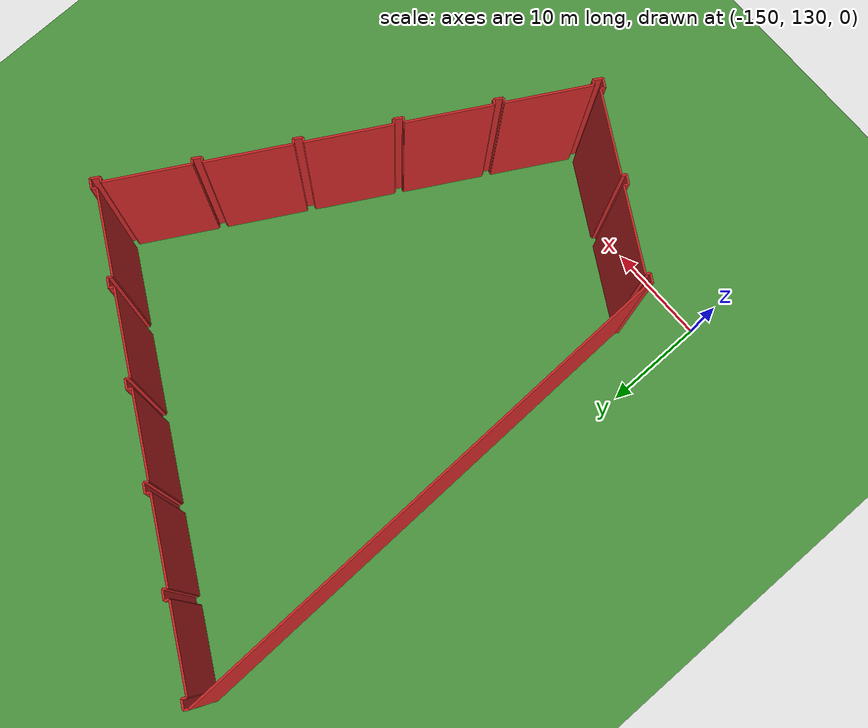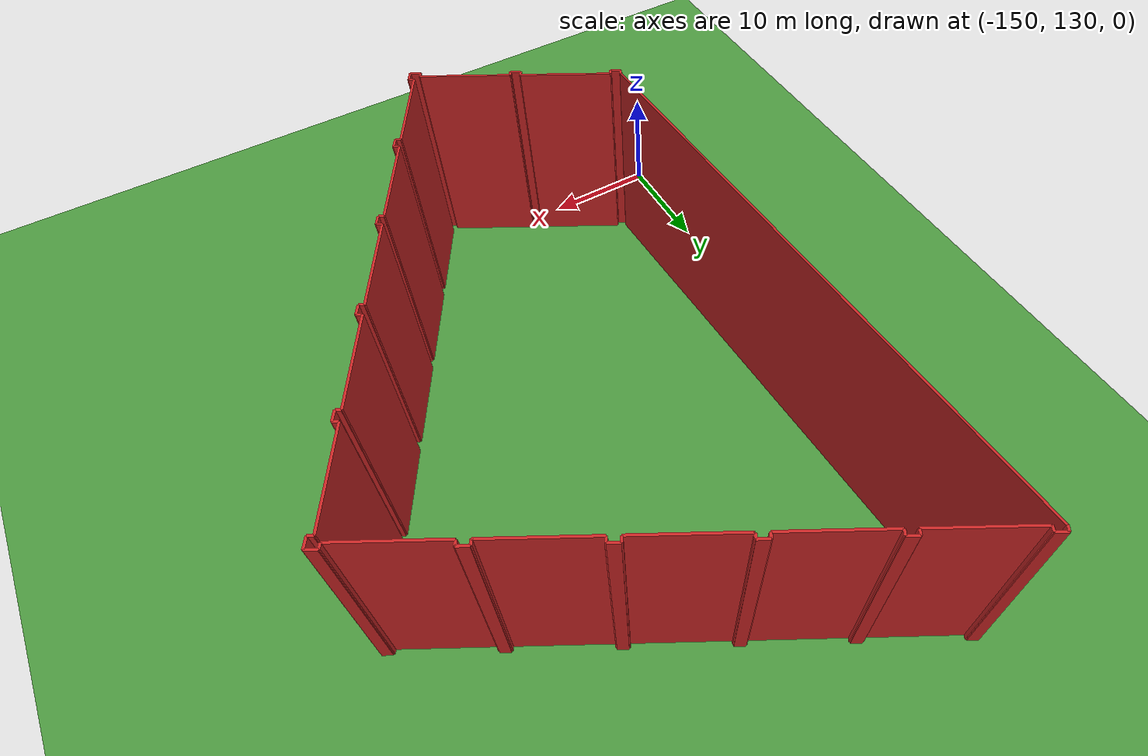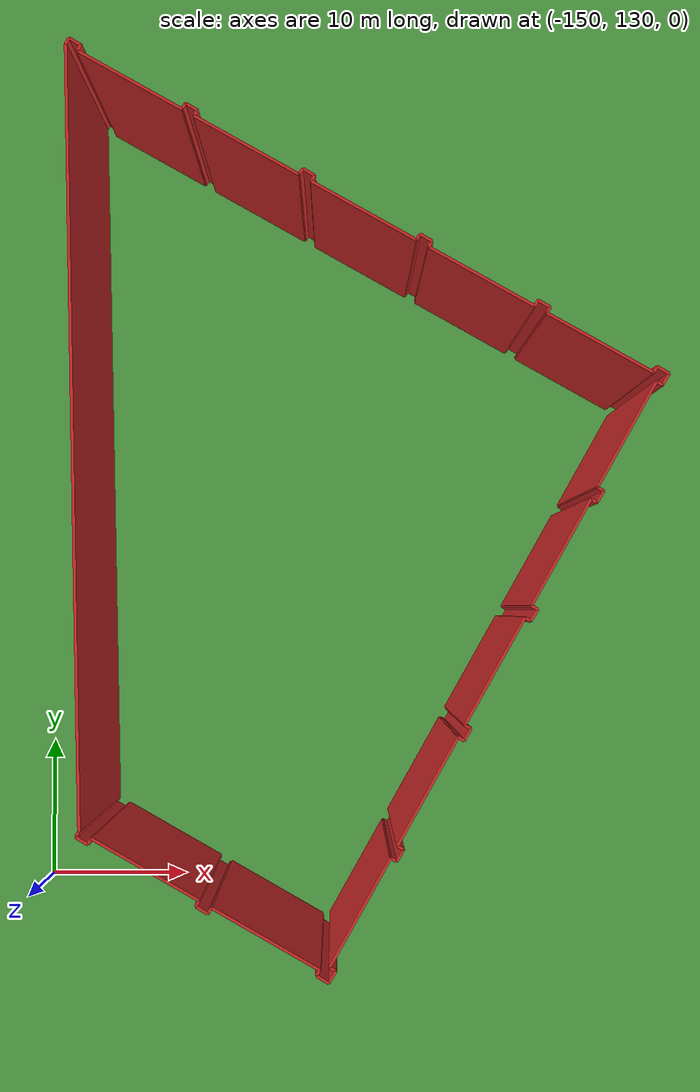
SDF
<sdf version="1.4">
 <world name="default">
  <model name="ground">
   <static>true</static>
   <link name="link">
    <collision name="collision">
     <geometry><plane><size>10000 10000</size><normal>0 0 1</normal></plane></geometry>
     <surface><friction><ode><mu>100</mu><mu2>50</mu2></ode></friction></surface>
    </collision>
    <visual name="visual">
     <pose>0 0 -1 0 0 0</pose>
     <geometry><plane><normal>0 0 1</normal><size>10000 10000</size></plane></geometry>
     <material>
      <script><uri>file://media/materials/scripts/gazebo.material</uri><name>Gazebo/Grass</name></script>
     </material>
    </visual>
   </link>
  </model>
  <include><uri>model://sun</uri></include>
  <model name="J.P. Stevens Company Tower">
   <static>true</static>
   <pose>-125.743003051 156.209032803 0.0 0 0 0</pose>
   <link name="J.P. Stevens Company Tower_0">
    <collision name="J.P. Stevens Company Tower_0">
     <geometry><box><size>0.919651419224 0.2 20.0</size></box></geometry>
    </collision>
    <visual name="J.P. Stevens Company Tower_0">
     <geometry><box><size>0.919651419224 0.2 20.0</size></box></geometry>
     <material>
      <script><uri>file://media/materials/scripts/gazebo.material</uri><name>Gazebo/Red</name></script>
     </material>
    </visual>
    <pose>18.6141040798 9.3054667226 9.0 0 0 -0.538559237142</pose>
   </link>
   <link name="J.P. Stevens Company Tower_1">
    <collision name="J.P. Stevens Company Tower_1">
     <geometry><box><size>0.452371178246 0.2 20.0</size></box></geometry>
    </collision>
    <visual name="J.P. Stevens Company Tower_1">
     <geometry><box><size>0.452371178246 0.2 20.0</size></box></geometry>
     <material>
      <script><uri>file://media/materials/scripts/gazebo.material</uri><name>Gazebo/Red</name></script>
     </material>
    </visual>
    <pose>18.1026083594 9.34759166904 9.0 0 0 1.02837778564</pose>
   </link>
   <link name="J.P. Stevens Company Tower_2">
    <collision name="J.P. Stevens Company Tower_2">
     <geometry><box><size>7.97592165525 0.2 20.0</size></box></geometry>
    </collision>
    <visual name="J.P. Stevens Company Tower_2">
     <geometry><box><size>7.97592165525 0.2 20.0</size></box></geometry>
     <material>
      <script><uri>file://media/materials/scripts/gazebo.material</uri><name>Gazebo/Red</name></script>
     </material>
    </visual>
    <pose>14.5166121582 11.1206524804 9.0 0 0 -0.515740828973</pose>
   </link>
   <link name="J.P. Stevens Company Tower_3">
    <collision name="J.P. Stevens Company Tower_3">
     <geometry><box><size>0.439448370486 0.2 20.0</size></box></geometry>
    </collision>
    <visual name="J.P. Stevens Company Tower_3">
     <geometry><box><size>0.439448370486 0.2 20.0</size></box></geometry>
     <material>
      <script><uri>file://media/materials/scripts/gazebo.material</uri><name>Gazebo/Red</name></script>
     </material>
    </visual>
    <pose>11.1585742403 13.2769412312 9.0 0 0 -2.10143665262</pose>
   </link>
   <link name="J.P. Stevens Company Tower_4">
    <collision name="J.P. Stevens Company Tower_4">
     <geometry><box><size>0.919651672967 0.2 20.0</size></box></geometry>
    </collision>
    <visual name="J.P. Stevens Company Tower_4">
     <geometry><box><size>0.919651672967 0.2 20.0</size></box></geometry>
     <material>
      <script><uri>file://media/materials/scripts/gazebo.material</uri><name>Gazebo/Red</name></script>
     </material>
    </visual>
    <pose>10.8750369435 13.7022945993 9.0 0 0 -0.538560294085</pose>
   </link>
   <link name="J.P. Stevens Company Tower_5">
    <collision name="J.P. Stevens Company Tower_5">
     <geometry><box><size>0.452371526216 0.2 20.0</size></box></geometry>
    </collision>
    <visual name="J.P. Stevens Company Tower_5">
     <geometry><box><size>0.452371526216 0.2 20.0</size></box></geometry>
     <material>
      <script><uri>file://media/materials/scripts/gazebo.material</uri><name>Gazebo/Red</name></script>
     </material>
    </visual>
    <pose>10.3635412482 13.7444198944 9.0 0 0 1.0283776541</pose>
   </link>
   <link name="J.P. Stevens Company Tower_6">
    <collision name="J.P. Stevens Company Tower_6">
     <geometry><box><size>7.98008079639 0.2 20.0</size></box></geometry>
    </collision>
    <visual name="J.P. Stevens Company Tower_6">
     <geometry><box><size>7.98008079639 0.2 20.0</size></box></geometry>
     <material>
      <script><uri>file://media/materials/scripts/gazebo.material</uri><name>Gazebo/Red</name></script>
     </material>
    </visual>
    <pose>6.77754620049 15.521696053 9.0 0 0 -0.516660065152</pose>
   </link>
   <link name="J.P. Stevens Company Tower_7">
    <collision name="J.P. Stevens Company Tower_7">
     <geometry><box><size>0.439448715141 0.2 20.0</size></box></geometry>
    </collision>
    <visual name="J.P. Stevens Company Tower_7">
     <geometry><box><size>0.439448715141 0.2 20.0</size></box></geometry>
     <material>
      <script><uri>file://media/materials/scripts/gazebo.material</uri><name>Gazebo/Red</name></script>
     </material>
    </visual>
    <pose>3.41950966494 17.6822004179 9.0 0 0 -2.10143679167</pose>
   </link>
   <link name="J.P. Stevens Company Tower_8">
    <collision name="J.P. Stevens Company Tower_8">
     <geometry><box><size>0.91965192562 0.2 20.0</size></box></geometry>
    </collision>
    <visual name="J.P. Stevens Company Tower_8">
     <geometry><box><size>0.91965192562 0.2 20.0</size></box></geometry>
     <material>
      <script><uri>file://media/materials/scripts/gazebo.material</uri><name>Gazebo/Red</name></script>
     </material>
    </visual>
    <pose>3.13597262204 18.1075544004 9.0 0 0 -0.538561348907</pose>
   </link>
   <link name="J.P. Stevens Company Tower_9">
    <collision name="J.P. Stevens Company Tower_9">
     <geometry><box><size>0.459606283163 0.2 20.0</size></box></geometry>
    </collision>
    <visual name="J.P. Stevens Company Tower_9">
     <geometry><box><size>0.459606283163 0.2 20.0</size></box></geometry>
     <material>
      <script><uri>file://media/materials/scripts/gazebo.material</uri><name>Gazebo/Red</name></script>
     </material>
    </visual>
    <pose>2.62447685248 18.1454686844 9.0 0 0 1.03783731105</pose>
   </link>
   <link name="J.P. Stevens Company Tower_10">
    <collision name="J.P. Stevens Company Tower_10">
     <geometry><box><size>7.96625432974 0.2 20.0</size></box></geometry>
    </collision>
    <visual name="J.P. Stevens Company Tower_10">
     <geometry><box><size>7.96625432974 0.2 20.0</size></box></geometry>
     <material>
      <script><uri>file://media/materials/scripts/gazebo.material</uri><name>Gazebo/Red</name></script>
     </material>
    </visual>
    <pose>-0.95595759238 19.9143259806 9.0 0 0 -0.516431282123</pose>
   </link>
   <link name="J.P. Stevens Company Tower_11">
    <collision name="J.P. Stevens Company Tower_11">
     <geometry><box><size>0.445179558916 0.2 20.0</size></box></geometry>
    </collision>
    <visual name="J.P. Stevens Company Tower_11">
     <geometry><box><size>0.445179558916 0.2 20.0</size></box></geometry>
     <material>
      <script><uri>file://media/materials/scripts/gazebo.material</uri><name>Gazebo/Red</name></script>
     </material>
    </visual>
    <pose>-4.30287345234 22.0706229727 9.0 0 0 -2.12298160949</pose>
   </link>
   <link name="J.P. Stevens Company Tower_12">
    <collision name="J.P. Stevens Company Tower_12">
     <geometry><box><size>0.91965217799 0.2 20.0</size></box></geometry>
    </collision>
    <visual name="J.P. Stevens Company Tower_12">
     <geometry><box><size>0.91965217799 0.2 20.0</size></box></geometry>
     <material>
      <script><uri>file://media/materials/scripts/gazebo.material</uri><name>Gazebo/Red</name></script>
     </material>
    </visual>
    <pose>-4.58085049651 22.4959774336 9.0 0 0 -0.538562403919</pose>
   </link>
   <link name="J.P. Stevens Company Tower_13">
    <collision name="J.P. Stevens Company Tower_13">
     <geometry><box><size>0.465354616981 0.2 20.0</size></box></geometry>
    </collision>
    <visual name="J.P. Stevens Company Tower_13">
     <geometry><box><size>0.465354616981 0.2 20.0</size></box></geometry>
     <material>
      <script><uri>file://media/materials/scripts/gazebo.material</uri><name>Gazebo/Red</name></script>
     </material>
    </visual>
    <pose>-5.09790598995 22.5338921944 9.0 0 0 1.01725477821</pose>
   </link>
   <link name="J.P. Stevens Company Tower_14">
    <collision name="J.P. Stevens Company Tower_14">
     <geometry><box><size>7.98008487182 0.2 20.0</size></box></geometry>
    </collision>
    <visual name="J.P. Stevens Company Tower_14">
     <geometry><box><size>7.98008487182 0.2 20.0</size></box></geometry>
     <material>
      <script><uri>file://media/materials/scripts/gazebo.material</uri><name>Gazebo/Red</name></script>
     </material>
    </visual>
    <pose>-8.68945877412 24.3069651045 9.0 0 0 -0.516662152497</pose>
   </link>
   <link name="J.P. Stevens Company Tower_15">
    <collision name="J.P. Stevens Company Tower_15">
     <geometry><box><size>0.432205845303 0.2 20.0</size></box></geometry>
    </collision>
    <visual name="J.P. Stevens Company Tower_15">
     <geometry><box><size>0.432205845303 0.2 20.0</size></box></geometry>
     <material>
      <script><uri>file://media/materials/scripts/gazebo.material</uri><name>Gazebo/Red</name></script>
     </material>
    </visual>
    <pose>-12.0474928463 26.4632666135 9.0 0 0 -2.1112993099</pose>
   </link>
   <link name="J.P. Stevens Company Tower_16">
    <collision name="J.P. Stevens Company Tower_16">
     <geometry><box><size>0.924000594343 0.2 20.0</size></box></geometry>
    </collision>
    <visual name="J.P. Stevens Company Tower_16">
     <geometry><box><size>0.924000594343 0.2 20.0</size></box></geometry>
     <material>
      <script><uri>file://media/materials/scripts/gazebo.material</uri><name>Gazebo/Red</name></script>
     </material>
    </visual>
    <pose>-12.331029384 26.8886218229 9.0 0 0 -0.546388830562</pose>
   </link>
   <link name="J.P. Stevens Company Tower_17">
    <collision name="J.P. Stevens Company Tower_17">
     <geometry><box><size>0.459606998308 0.2 20.0</size></box></geometry>
    </collision>
    <visual name="J.P. Stevens Company Tower_17">
     <geometry><box><size>0.459606998308 0.2 20.0</size></box></geometry>
     <material>
      <script><uri>file://media/materials/scripts/gazebo.material</uri><name>Gazebo/Red</name></script>
     </material>
    </visual>
    <pose>-12.8425250043 26.9307481614 9.0 0 0 1.0378370418</pose>
   </link>
   <link name="J.P. Stevens Company Tower_18">
    <collision name="J.P. Stevens Company Tower_18">
     <geometry><box><size>7.98008691102 0.2 20.0</size></box></geometry>
    </collision>
    <visual name="J.P. Stevens Company Tower_18">
     <geometry><box><size>7.98008691102 0.2 20.0</size></box></geometry>
     <material>
      <script><uri>file://media/materials/scripts/gazebo.material</uri><name>Gazebo/Red</name></script>
     </material>
    </visual>
    <pose>-16.4285169871 28.7038249263 9.0 0 0 -0.516663196917</pose>
   </link>
   <link name="J.P. Stevens Company Tower_19">
    <collision name="J.P. Stevens Company Tower_19">
     <geometry><box><size>0.446734657854 0.2 20.0</size></box></geometry>
    </collision>
    <visual name="J.P. Stevens Company Tower_19">
     <geometry><box><size>0.446734657854 0.2 20.0</size></box></geometry>
     <material>
      <script><uri>file://media/materials/scripts/gazebo.material</uri><name>Gazebo/Red</name></script>
     </material>
    </visual>
    <pose>-19.7865495633 30.8685534351 9.0 0 0 -2.0918957132</pose>
   </link>
   <link name="J.P. Stevens Company Tower_20">
    <collision name="J.P. Stevens Company Tower_20">
     <geometry><box><size>0.919652685218 0.2 20.0</size></box></geometry>
    </collision>
    <visual name="J.P. Stevens Company Tower_20">
     <geometry><box><size>0.919652685218 0.2 20.0</size></box></geometry>
     <material>
      <script><uri>file://media/materials/scripts/gazebo.material</uri><name>Gazebo/Red</name></script>
     </material>
    </visual>
    <pose>-20.0700857407 31.2981206311 9.0 0 0 -0.538564515181</pose>
   </link>
   <link name="J.P. Stevens Company Tower_21">
    <collision name="J.P. Stevens Company Tower_21">
     <geometry><box><size>0.459607354822 0.2 20.0</size></box></geometry>
    </collision>
    <visual name="J.P. Stevens Company Tower_21">
     <geometry><box><size>0.459607354822 0.2 20.0</size></box></geometry>
     <material>
      <script><uri>file://media/materials/scripts/gazebo.material</uri><name>Gazebo/Red</name></script>
     </material>
    </visual>
    <pose>-20.581581443 31.3360359461 9.0 0 0 1.03783690044</pose>
   </link>
   <link name="J.P. Stevens Company Tower_22">
    <collision name="J.P. Stevens Company Tower_22">
     <geometry><box><size>51.6904807737 0.2 20.0</size></box></geometry>
    </collision>
    <visual name="J.P. Stevens Company Tower_22">
     <geometry><box><size>51.6904807737 0.2 20.0</size></box></geometry>
     <material>
      <script><uri>file://media/materials/scripts/gazebo.material</uri><name>Gazebo/Red</name></script>
     </material>
    </visual>
    <pose>-20.0372958613 5.30131917657 9.0 0 0 1.5963761768</pose>
   </link>
   <link name="J.P. Stevens Company Tower_23">
    <collision name="J.P. Stevens Company Tower_23">
     <geometry><box><size>0.412041207496 0.2 20.0</size></box></geometry>
    </collision>
    <visual name="J.P. Stevens Company Tower_23">
     <geometry><box><size>0.412041207496 0.2 20.0</size></box></geometry>
     <material>
      <script><uri>file://media/materials/scripts/gazebo.material</uri><name>Gazebo/Red</name></script>
     </material>
    </visual>
    <pose>-19.4818890069 -20.7123417287 9.0 0 0 1.03240379234</pose>
   </link>
   <link name="J.P. Stevens Company Tower_24">
    <collision name="J.P. Stevens Company Tower_24">
     <geometry><box><size>0.919652655662 0.2 20.0</size></box></geometry>
    </collision>
    <visual name="J.P. Stevens Company Tower_24">
     <geometry><box><size>0.919652655662 0.2 20.0</size></box></geometry>
     <material>
      <script><uri>file://media/materials/scripts/gazebo.material</uri><name>Gazebo/Red</name></script>
     </material>
    </visual>
    <pose>-19.1927897501 -21.1250614786 9.0 0 0 2.60303528181</pose>
   </link>
   <link name="J.P. Stevens Company Tower_25">
    <collision name="J.P. Stevens Company Tower_25">
     <geometry><box><size>0.438031400187 0.2 20.0</size></box></geometry>
    </collision>
    <visual name="J.P. Stevens Company Tower_25">
     <geometry><box><size>0.438031400187 0.2 20.0</size></box></geometry>
     <material>
      <script><uri>file://media/materials/scripts/gazebo.material</uri><name>Gazebo/Red</name></script>
     </material>
    </visual>
    <pose>-18.6812940124 -21.1756073032 9.0 0 0 -2.13306101329</pose>
   </link>
   <link name="J.P. Stevens Company Tower_26">
    <collision name="J.P. Stevens Company Tower_26">
     <geometry><box><size>7.98008655714 0.2 20.0</size></box></geometry>
    </collision>
    <visual name="J.P. Stevens Company Tower_26">
     <geometry><box><size>7.98008655714 0.2 20.0</size></box></geometry>
     <material>
      <script><uri>file://media/materials/scripts/gazebo.material</uri><name>Gazebo/Red</name></script>
     </material>
    </visual>
    <pose>-15.0952897722 -22.9612926628 9.0 0 0 2.62493652388</pose>
   </link>
   <link name="J.P. Stevens Company Tower_27">
    <collision name="J.P. Stevens Company Tower_27">
     <geometry><box><size>0.425005748263 0.2 20.0</size></box></geometry>
    </collision>
    <visual name="J.P. Stevens Company Tower_27">
     <geometry><box><size>0.425005748263 0.2 20.0</size></box></geometry>
     <material>
      <script><uri>file://media/materials/scripts/gazebo.material</uri><name>Gazebo/Red</name></script>
     </material>
    </visual>
    <pose>-11.737241729 -25.1133630939 9.0 0 0 1.02010288427</pose>
   </link>
   <link name="J.P. Stevens Company Tower_28">
    <collision name="J.P. Stevens Company Tower_28">
     <geometry><box><size>0.924000564746 0.2 20.0</size></box></geometry>
    </collision>
    <visual name="J.P. Stevens Company Tower_28">
     <geometry><box><size>0.924000564746 0.2 20.0</size></box></geometry>
     <material>
      <script><uri>file://media/materials/scripts/gazebo.material</uri><name>Gazebo/Red</name></script>
     </material>
    </visual>
    <pose>-11.4537021212 -25.5345048757 9.0 0 0 2.59521096811</pose>
   </link>
   <link name="J.P. Stevens Company Tower_29">
    <collision name="J.P. Stevens Company Tower_29">
     <geometry><box><size>0.452372481218 0.2 20.0</size></box></geometry>
    </collision>
    <visual name="J.P. Stevens Company Tower_29">
     <geometry><box><size>0.452372481218 0.2 20.0</size></box></geometry>
     <material>
      <script><uri>file://media/materials/scripts/gazebo.material</uri><name>Gazebo/Red</name></script>
     </material>
    </visual>
    <pose>-10.9422062789 -25.5808389759 9.0 0 0 -2.11320840472</pose>
   </link>
   <link name="J.P. Stevens Company Tower_30">
    <collision name="J.P. Stevens Company Tower_30">
     <geometry><box><size>7.97041818174 0.2 20.0</size></box></geometry>
    </collision>
    <visual name="J.P. Stevens Company Tower_30">
     <geometry><box><size>7.97041818174 0.2 20.0</size></box></geometry>
     <material>
      <script><uri>file://media/materials/scripts/gazebo.material</uri><name>Gazebo/Red</name></script>
     </material>
    </visual>
    <pose>-7.36176057468 -27.358097503 9.0 0 0 2.62424844755</pose>
   </link>
   <link name="J.P. Stevens Company Tower_31">
    <collision name="J.P. Stevens Company Tower_31">
     <geometry><box><size>0.419294084896 0.2 20.0</size></box></geometry>
    </collision>
    <visual name="J.P. Stevens Company Tower_31">
     <geometry><box><size>0.419294084896 0.2 20.0</size></box></geometry>
     <material>
      <script><uri>file://media/materials/scripts/gazebo.material</uri><name>Gazebo/Red</name></script>
     </material>
    </visual>
    <pose>-4.00371125067 -29.5101636837 9.0 0 0 1.04270413099</pose>
   </link>
   <link name="J.P. Stevens Company Tower_32">
    <collision name="J.P. Stevens Company Tower_32">
     <geometry><box><size>0.919652150293 0.2 20.0</size></box></geometry>
    </collision>
    <visual name="J.P. Stevens Company Tower_32">
     <geometry><box><size>0.919652150293 0.2 20.0</size></box></geometry>
     <material>
      <script><uri>file://media/materials/scripts/gazebo.material</uri><name>Gazebo/Red</name></script>
     </material>
    </visual>
    <pose>-3.71461157458 -29.9270935888 9.0 0 0 2.60303739292</pose>
   </link>
   <link name="J.P. Stevens Company Tower_33">
    <collision name="J.P. Stevens Company Tower_33">
     <geometry><box><size>0.884577185449 0.2 20.0</size></box></geometry>
    </collision>
    <visual name="J.P. Stevens Company Tower_33">
     <geometry><box><size>0.884577185449 0.2 20.0</size></box></geometry>
     <material>
      <script><uri>file://media/materials/scripts/gazebo.material</uri><name>Gazebo/Red</name></script>
     </material>
    </visual>
    <pose>-3.09191753215 -29.7839179123 9.0 0 0 -2.11227211118</pose>
   </link>
   <link name="J.P. Stevens Company Tower_34">
    <collision name="J.P. Stevens Company Tower_34">
     <geometry><box><size>0.46460763109 0.2 20.0</size></box></geometry>
    </collision>
    <visual name="J.P. Stevens Company Tower_34">
     <geometry><box><size>0.46460763109 0.2 20.0</size></box></geometry>
     <material>
      <script><uri>file://media/materials/scripts/gazebo.material</uri><name>Gazebo/Red</name></script>
     </material>
    </visual>
    <pose>-3.06411029294 -29.2869775495 9.0 0 0 -0.532417850988</pose>
   </link>
   <link name="J.P. Stevens Company Tower_35">
    <collision name="J.P. Stevens Company Tower_35">
     <geometry><box><size>7.96423391195 0.2 20.0</size></box></geometry>
    </collision>
    <visual name="J.P. Stevens Company Tower_35">
     <geometry><box><size>7.96423391195 0.2 20.0</size></box></geometry>
     <material>
      <script><uri>file://media/materials/scripts/gazebo.material</uri><name>Gazebo/Red</name></script>
     </material>
    </visual>
    <pose>-1.29604781684 -25.7073512188 9.0 0 0 -2.08778265078</pose>
   </link>
   <link name="J.P. Stevens Company Tower_36">
    <collision name="J.P. Stevens Company Tower_36">
     <geometry><box><size>0.44118967906 0.2 20.0</size></box></geometry>
    </collision>
    <visual name="J.P. Stevens Company Tower_36">
     <geometry><box><size>0.44118967906 0.2 20.0</size></box></geometry>
     <material>
      <script><uri>file://media/materials/scripts/gazebo.material</uri><name>Gazebo/Red</name></script>
     </material>
    </visual>
    <pose>0.861192818594 -22.3593566478 9.0 0 0 2.60003587309</pose>
   </link>
   <link name="J.P. Stevens Company Tower_37">
    <collision name="J.P. Stevens Company Tower_37">
     <geometry><box><size>0.87736962515 0.2 20.0</size></box></geometry>
    </collision>
    <visual name="J.P. Stevens Company Tower_37">
     <geometry><box><size>0.87736962515 0.2 20.0</size></box></geometry>
     <material>
      <script><uri>file://media/materials/scripts/gazebo.material</uri><name>Gazebo/Red</name></script>
     </material>
    </visual>
    <pose>1.27817853512 -22.0982598663 9.0 0 0 -2.11722113007</pose>
   </link>
   <link name="J.P. Stevens Company Tower_38">
    <collision name="J.P. Stevens Company Tower_38">
     <geometry><box><size>0.468939113896 0.2 20.0</size></box></geometry>
    </collision>
    <visual name="J.P. Stevens Company Tower_38">
     <geometry><box><size>0.468939113896 0.2 20.0</size></box></geometry>
     <material>
      <script><uri>file://media/materials/scripts/gazebo.material</uri><name>Gazebo/Red</name></script>
     </material>
    </visual>
    <pose>1.30598629119 -21.6013198266 9.0 0 0 -0.547894479588</pose>
   </link>
   <link name="J.P. Stevens Company Tower_39">
    <collision name="J.P. Stevens Company Tower_39">
     <geometry><box><size>7.98437033876 0.2 20.0</size></box></geometry>
    </collision>
    <visual name="J.P. Stevens Company Tower_39">
     <geometry><box><size>7.98437033876 0.2 20.0</size></box></geometry>
     <material>
      <script><uri>file://media/materials/scripts/gazebo.material</uri><name>Gazebo/Red</name></script>
     </material>
    </visual>
    <pose>3.07961247494 -18.0090634818 9.0 0 0 -2.08795184927</pose>
   </link>
   <link name="J.P. Stevens Company Tower_40">
    <collision name="J.P. Stevens Company Tower_40">
     <geometry><box><size>0.450754529865 0.2 20.0</size></box></geometry>
    </collision>
    <visual name="J.P. Stevens Company Tower_40">
     <geometry><box><size>0.450754529865 0.2 20.0</size></box></geometry>
     <material>
      <script><uri>file://media/materials/scripts/gazebo.material</uri><name>Gazebo/Red</name></script>
     </material>
    </visual>
    <pose>5.24797624716 -14.6526506305 9.0 0 0 2.61275100031</pose>
   </link>
   <link name="J.P. Stevens Company Tower_41">
    <collision name="J.P. Stevens Company Tower_41">
     <geometry><box><size>0.87889723014 0.2 20.0</size></box></geometry>
    </collision>
    <visual name="J.P. Stevens Company Tower_41">
     <geometry><box><size>0.87889723014 0.2 20.0</size></box></geometry>
     <material>
      <script><uri>file://media/materials/scripts/gazebo.material</uri><name>Gazebo/Red</name></script>
     </material>
    </visual>
    <pose>5.66496231662 -14.3873430804 9.0 0 0 -2.10143258558</pose>
   </link>
   <link name="J.P. Stevens Company Tower_42">
    <collision name="J.P. Stevens Company Tower_42">
     <geometry><box><size>0.46460748906 0.2 20.0</size></box></geometry>
    </collision>
    <visual name="J.P. Stevens Company Tower_42">
     <geometry><box><size>0.46460748906 0.2 20.0</size></box></geometry>
     <material>
      <script><uri>file://media/materials/scripts/gazebo.material</uri><name>Gazebo/Red</name></script>
     </material>
    </visual>
    <pose>5.68721084409 -13.8904032587 9.0 0 0 -0.532419412583</pose>
   </link>
   <link name="J.P. Stevens Company Tower_43">
    <collision name="J.P. Stevens Company Tower_43">
     <geometry><box><size>7.96422678761 0.2 20.0</size></box></geometry>
    </collision>
    <visual name="J.P. Stevens Company Tower_43">
     <geometry><box><size>7.96422678761 0.2 20.0</size></box></geometry>
     <material>
      <script><uri>file://media/materials/scripts/gazebo.material</uri><name>Gazebo/Red</name></script>
     </material>
    </visual>
    <pose>7.45528077624 -10.3107848489 9.0 0 0 -2.08778524238</pose>
   </link>
   <link name="J.P. Stevens Company Tower_44">
    <collision name="J.P. Stevens Company Tower_44">
     <geometry><box><size>0.44118954043 0.2 20.0</size></box></geometry>
    </collision>
    <visual name="J.P. Stevens Company Tower_44">
     <geometry><box><size>0.44118954043 0.2 20.0</size></box></geometry>
     <material>
      <script><uri>file://media/materials/scripts/gazebo.material</uri><name>Gazebo/Red</name></script>
     </material>
    </visual>
    <pose>9.61252838541 -6.96279873488 9.0 0 0 2.60003431152</pose>
   </link>
   <link name="J.P. Stevens Company Tower_45">
    <collision name="J.P. Stevens Company Tower_45">
     <geometry><box><size>0.884576032176 0.2 20.0</size></box></geometry>
    </collision>
    <visual name="J.P. Stevens Company Tower_45">
     <geometry><box><size>0.884576032176 0.2 20.0</size></box></geometry>
     <material>
      <script><uri>file://media/materials/scripts/gazebo.material</uri><name>Gazebo/Red</name></script>
     </material>
    </visual>
    <pose>10.0295147307 -6.69749177607 9.0 0 0 -2.1122760184</pose>
   </link>
   <link name="J.P. Stevens Company Tower_46">
    <collision name="J.P. Stevens Company Tower_46">
     <geometry><box><size>0.464607418522 0.2 20.0</size></box></geometry>
    </collision>
    <visual name="J.P. Stevens Company Tower_46">
     <geometry><box><size>0.464607418522 0.2 20.0</size></box></geometry>
     <material>
      <script><uri>file://media/materials/scripts/gazebo.material</uri><name>Gazebo/Red</name></script>
     </material>
    </visual>
    <pose>10.0573235219 -6.20055238224 9.0 0 0 -0.53242019816</pose>
   </link>
   <link name="J.P. Stevens Company Tower_47">
    <collision name="J.P. Stevens Company Tower_47">
     <geometry><box><size>7.97154635256 0.2 20.0</size></box></geometry>
    </collision>
    <visual name="J.P. Stevens Company Tower_47">
     <geometry><box><size>7.97154635256 0.2 20.0</size></box></geometry>
     <material>
      <script><uri>file://media/materials/scripts/gazebo.material</uri><name>Gazebo/Red</name></script>
     </material>
    </visual>
    <pose>11.8253972677 -2.61672657487 9.0 0 0 -2.08726431671</pose>
   </link>
   <link name="J.P. Stevens Company Tower_48">
    <collision name="J.P. Stevens Company Tower_48">
     <geometry><box><size>0.450754394159 0.2 20.0</size></box></geometry>
    </collision>
    <visual name="J.P. Stevens Company Tower_48">
     <geometry><box><size>0.450754394159 0.2 20.0</size></box></geometry>
     <material>
      <script><uri>file://media/materials/scripts/gazebo.material</uri><name>Gazebo/Red</name></script>
     </material>
    </visual>
    <pose>13.9882081954 0.735466550466 9.0 0 0 2.61274943053</pose>
   </link>
   <link name="J.P. Stevens Company Tower_49">
    <collision name="J.P. Stevens Company Tower_49">
     <geometry><box><size>0.877368487022 0.2 20.0</size></box></geometry>
    </collision>
    <visual name="J.P. Stevens Company Tower_49">
     <geometry><box><size>0.877368487022 0.2 20.0</size></box></geometry>
     <material>
      <script><uri>file://media/materials/scripts/gazebo.material</uri><name>Gazebo/Red</name></script>
     </material>
    </visual>
    <pose>14.410754474 0.996561447048 9.0 0 0 -2.11722504377</pose>
   </link>
   <link name="J.P. Stevens Company Tower_50">
    <collision name="J.P. Stevens Company Tower_50">
     <geometry><box><size>0.47846591156 0.2 20.0</size></box></geometry>
    </collision>
    <visual name="J.P. Stevens Company Tower_50">
     <geometry><box><size>0.47846591156 0.2 20.0</size></box></geometry>
     <material>
      <script><uri>file://media/materials/scripts/gazebo.material</uri><name>Gazebo/Red</name></script>
     </material>
    </visual>
    <pose>14.4330040366 1.4935006361 9.0 0 0 -0.535791449607</pose>
   </link>
   <link name="J.P. Stevens Company Tower_51">
    <collision name="J.P. Stevens Company Tower_51">
     <geometry><box><size>7.97154278812 0.2 20.0</size></box></geometry>
    </collision>
    <visual name="J.P. Stevens Company Tower_51">
     <geometry><box><size>7.97154278812 0.2 20.0</size></box></geometry>
     <material>
      <script><uri>file://media/materials/scripts/gazebo.material</uri><name>Gazebo/Red</name></script>
     </material>
    </visual>
    <pose>16.1955218578 5.08153395457 9.0 0 0 -2.08726561208</pose>
   </link>
   <link name="J.P. Stevens Company Tower_52">
    <collision name="J.P. Stevens Company Tower_52">
     <geometry><box><size>0.455061828005 0.2 20.0</size></box></geometry>
    </collision>
    <visual name="J.P. Stevens Company Tower_52">
     <geometry><box><size>0.455061828005 0.2 20.0</size></box></geometry>
     <material>
      <script><uri>file://media/materials/scripts/gazebo.material</uri><name>Gazebo/Red</name></script>
     </material>
    </visual>
    <pose>18.3583361831 8.4295114949 9.0 0 0 2.59676733108</pose>
   </link>
   <link name="J.P. Stevens Company Tower_53">
    <collision name="J.P. Stevens Company Tower_53">
     <geometry><box><size>0.884575261648 0.2 20.0</size></box></geometry>
    </collision>
    <visual name="J.P. Stevens Company Tower_53">
     <geometry><box><size>0.884575261648 0.2 20.0</size></box></geometry>
     <material>
      <script><uri>file://media/materials/scripts/gazebo.material</uri><name>Gazebo/Red</name></script>
     </material>
    </visual>
    <pose>18.7808827335 8.69060579689 9.0 0 0 -2.11227862407</pose>
   </link>
  </model>
 </world>
</sdf>
